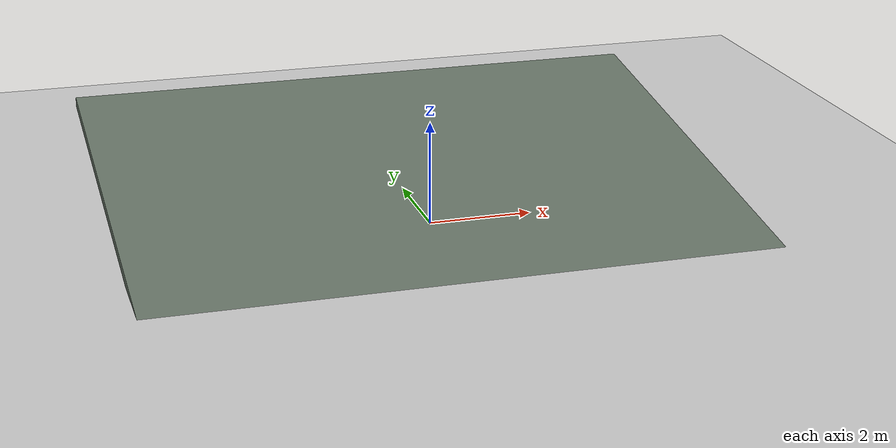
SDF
<?xml version="1.0"?>
<sdf version="1.6">
  <world name="tilt_test">
    <!-- Ignition 不会自动加载 Sensors/Imu/Contact，需显式声明全部 system plugin。
         模型真值位姿改由 SceneBroadcaster 提供，实验脚本用
         `ign model -m tarantula -p` 读取，不再需要 gazebo_ros_state。 -->
    <plugin filename="gz-sim-physics-system" name="gz::sim::systems::Physics"/>
    <plugin filename="gz-sim-sensors-system" name="gz::sim::systems::Sensors">
      <render_engine>ogre2</render_engine>
    </plugin>
    <plugin filename="gz-sim-imu-system" name="gz::sim::systems::Imu"/>
    <plugin filename="gz-sim-contact-system" name="gz::sim::systems::Contact"/>
    <plugin filename="gz-sim-scene-broadcaster-system" name="gz::sim::systems::SceneBroadcaster"/>
    <plugin filename="gz-sim-user-commands-system" name="gz::sim::systems::UserCommands"/>

    <!-- model://sun 与 model://ground_plane 走 Fuel 解析，在 Ignition 下
         无法离线获取（Error Code 13），改为内联定义 -->
    <light name="sun" type="directional">
      <cast_shadows>true</cast_shadows>
      <pose>0 0 10 0 0 0</pose>
      <diffuse>0.8 0.8 0.8 1</diffuse>
      <specular>0.2 0.2 0.2 1</specular>
      <direction>-0.5 0.1 -0.9</direction>
    </light>

    <model name="ground_plane">
      <static>true</static>
      <link name="link">
        <collision name="collision">
          <geometry><plane><normal>0 0 1</normal><size>100 100</size></plane></geometry>
          <surface><friction><ode><mu>1.0</mu><mu2>1.0</mu2></ode></friction></surface>
        </collision>
        <visual name="visual">
          <geometry><plane><normal>0 0 1</normal><size>100 100</size></plane></geometry>
          <material><ambient>0.8 0.8 0.8 1</ambient><diffuse>0.8 0.8 0.8 1</diffuse></material>
        </visual>
      </link>
    </model>

    <physics type="ode">
      <max_step_size>0.001</max_step_size>
      <real_time_update_rate>1000</real_time_update_rate>
    </physics>

    <!-- 绕 x 轴倾斜 8 度（0.14 rad）的大平板：车出生其上即被强制侧倾，
         用于主动调平 ON/OFF 对照实验。板要足够大，滑移也不会出边缘。 -->
    <model name="tilted_plane">
      <static>true</static>
      <pose>0 0 0.3 0.14 0 0</pose>
      <link name="link">
        <collision name="c">
          <geometry><box><size>12 12 0.2</size></box></geometry>
          <surface><friction><ode><mu>1.2</mu><mu2>1.0</mu2></ode></friction></surface>
        </collision>
        <visual name="v"><geometry><box><size>12 12 0.2</size></box></geometry>
          <material><ambient>0.4 0.45 0.4 1</ambient><diffuse>0.4 0.45 0.4 1</diffuse></material></visual>
      </link>
    </model>
  </world>
</sdf>
